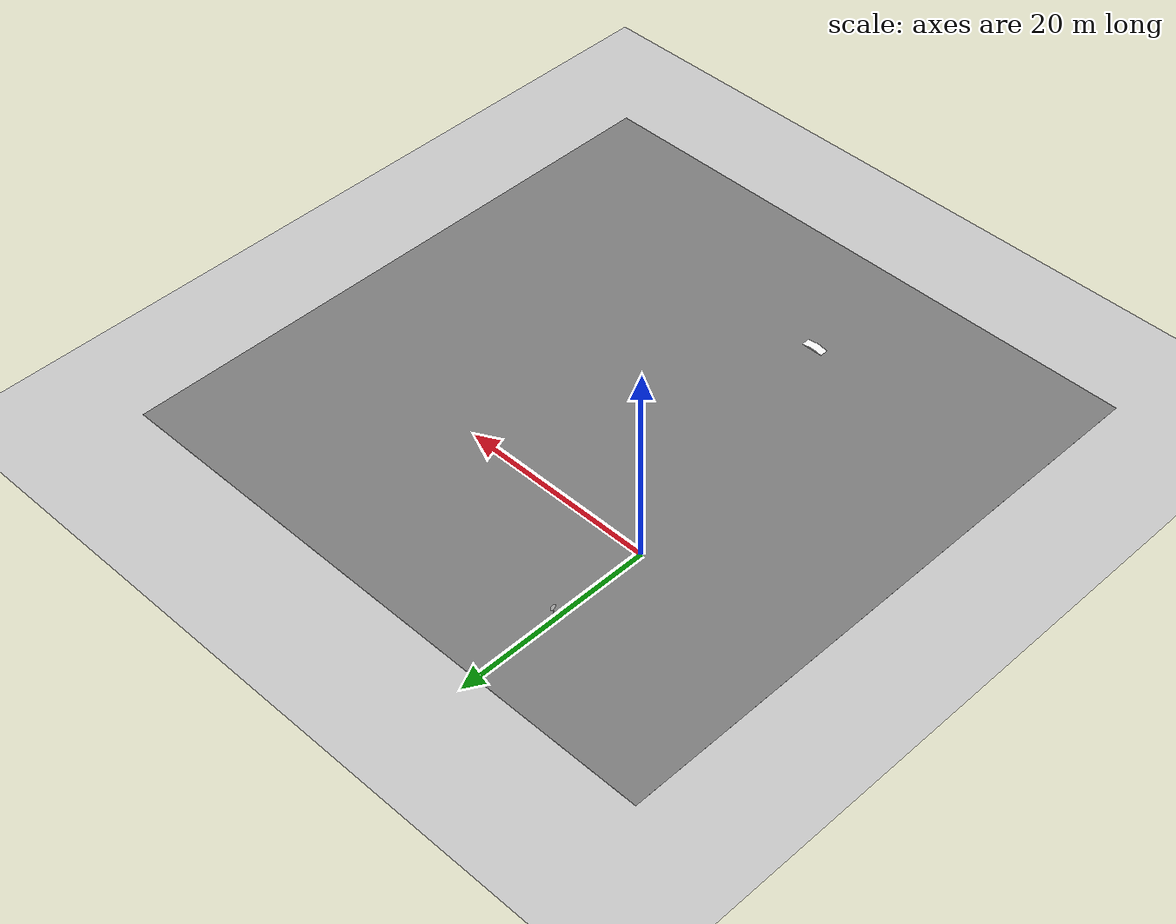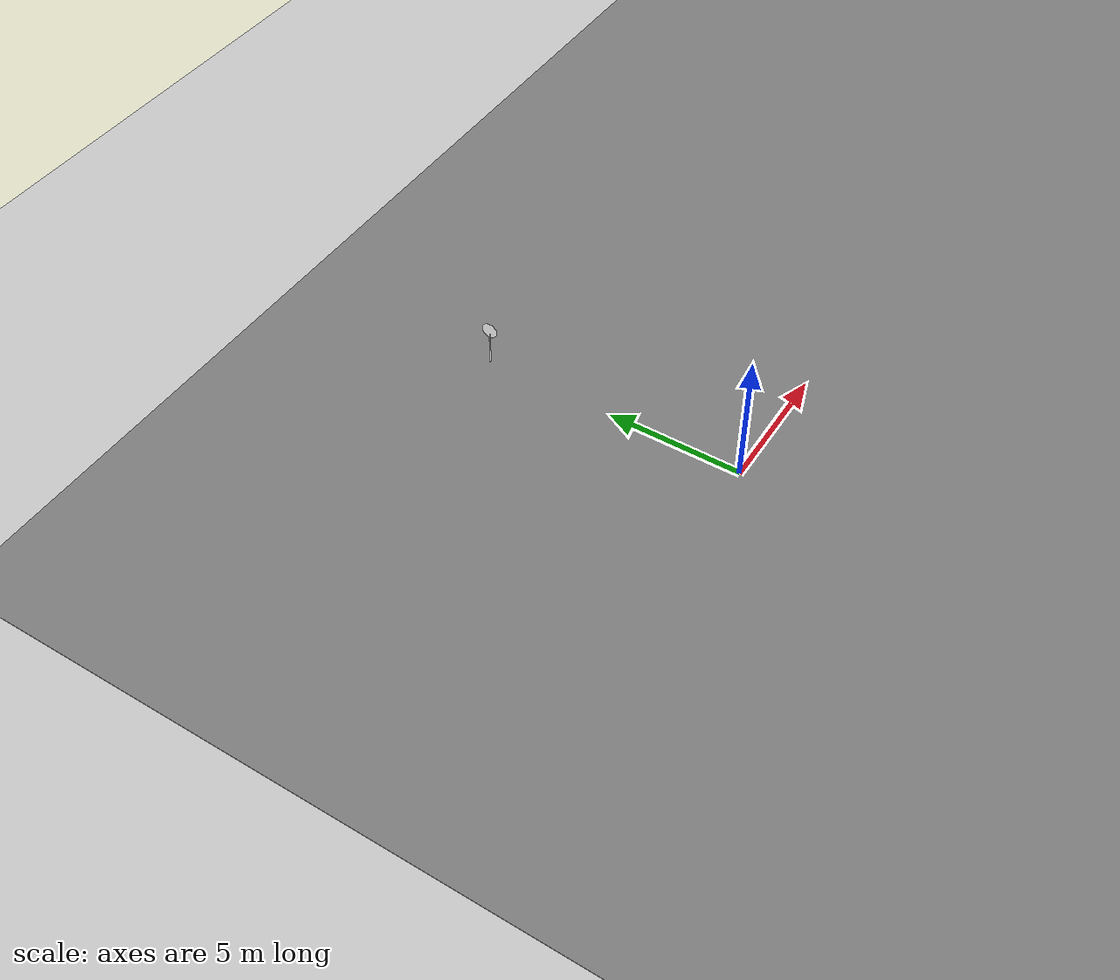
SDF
<sdf version="1.7">
 <world name="default">
  <scene><ambient>1 1 1</ambient><grid>false</grid></scene>
  <frame name="course_frame"><pose relative_to="world">-15 28.7 0 0 0 0</pose></frame>
  <spherical_coordinates>
   <surface_model>EARTH_WGS84</surface_model>
   <latitude_deg>42.66791</latitude_deg>
   <longitude_deg>-83.21958</longitude_deg>
   <elevation>286</elevation>
   <heading_deg>90</heading_deg>
  </spherical_coordinates>
  <physics name="1ms" type="ODE">
   <max_step_size>0.001</max_step_size>
   <real_time_factor>1.0</real_time_factor>
  </physics>
  <include><uri>model://ground_plane</uri><name>Ground Plane</name></include>
  <include>
   <uri>model://stop_sign</uri>
   <name>Stop Sign</name>
   <pose relative_to="course_frame">0 10 0 0 0 1.5708</pose>
  </include>
  <include>
   <uri>model://igvc_track</uri>
   <name>IGVC Track</name>
   <pose relative_to="course_frame">12.5 -11.5 0 0 0 3.1415</pose>
  </include>
  <include>
   <uri>model://ramp</uri>
   <name>Ramp</name>
   <pose relative_to="course_frame">6.5 -29 0 0 0 0</pose>
  </include>
  <light name="sun" type="directional">
   <pose>0 0 10 0 -0 0</pose>
   <diffuse>0.8 0.8 0.8 1</diffuse>
   <specular>0.2 0.2 0.2 1</specular>
   <attenuation>
    <range>1000</range>
    <constant>0.9</constant>
    <linear>0.01</linear>
    <quadratic>0.001</quadratic>
   </attenuation>
   <direction>-0.5 0.1 -0.9</direction>
   <spot><inner_angle>0</inner_angle><outer_angle>0</outer_angle><falloff>0</falloff></spot>
  </light>
  <gravity>0 0 -9.8</gravity>
  <magnetic_field>6e-06 2.3e-05 -4.2e-05</magnetic_field>
  <atmosphere type="adiabatic"/>
  <physics type="ode">
   <max_step_size>0.001</max_step_size>
   <real_time_factor>1</real_time_factor>
   <real_time_update_rate>1000</real_time_update_rate>
  </physics>
  <scene><ambient>0.7 0.7 0.7 1</ambient><background>0.8 0.8 0.8  1</background><shadows>1</shadows></scene>
 </world>
</sdf>

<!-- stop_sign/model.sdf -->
<sdf version="1.5">
  <model name="Stop Sign">
    <link name="link">
      <collision name="collision">
        <geometry>
          <mesh>
            <uri>model://stop_sign/meshes/stop_sign.dae</uri>
          </mesh>
        </geometry>
      </collision>
      <visual name="visual">
        <geometry>
          <mesh>
            <uri>model://stop_sign/meshes/stop_sign.dae</uri>
          </mesh>
        </geometry>
        <material>
          <script>
            <uri>model://stop_sign/materials/scripts</uri>
            <uri>model://stop_sign/materials/textures</uri>
            <name>StopSign/Diffuse</name>
          </script>
        </material>
      </visual>
    </link>
  </model>
</sdf>

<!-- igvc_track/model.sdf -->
<sdf version="1.9">
  <model name="igvc_track">
    <static>true</static>
    <link name="link">
      <visual name="visual">
        <cast_shadows>false</cast_shadows>
        <geometry>
          <box>
            <size>60 60 .005</size>
          </box>
        </geometry>
        <material>
          <ambient>0.5 0.5 0.5 1.0</ambient>
          <diffuse>0.5 0.5 0.5 1.0</diffuse>
          <specular>0.2 0.2 0.2 1.0</specular>
          <pbr>
            <metal>
              <albedo_map>model://igvc_track/textures/ground_surface/tarmac2.png</albedo_map>
              <roughness>0.8</roughness>
              <metalness>0.0</metalness>
            </metal>
          </pbr>
        </material>
      </visual>
    </link>
    <link name="link2">
      <pose>0 0 0.006 0 0 0</pose>
      <visual name="visual">
        <cast_shadows>false</cast_shadows>
        <geometry>
          <box>
            <size>60 60 .001</size>
          </box>
        </geometry>
        <material>
          <diffuse>0.5 0.5 0.5 1.0</diffuse>
          <ambient>0.5 0.5 0.5 1.0</ambient>
          <specular>0.2 0.2 0.2 1.0</specular>
          <pbr>
            <metal>
              <albedo_map>model://igvc_track/textures/course/track_floor3.png</albedo_map>
              <roughness>0.8</roughness>
              <metalness>0.0</metalness>
            </metal>
          </pbr>
          <render_order>1</render_order>
          <uv_map>
            <scale>1.0 1.0</scale>
          </uv_map>
        </material>
      </visual>
    </link>
  </model>
</sdf>

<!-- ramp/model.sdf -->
<sdf version='1.6'>
  <model name='ramp'>
    <link name='link_0'>
      <inertial>
        <mass>1</mass>
        <inertia>
          <ixx>0.166667</ixx>
          <ixy>0</ixy>
          <ixz>0</ixz>
          <iyy>0.166667</iyy>
          <iyz>0</iyz>
          <izz>0.166667</izz>
        </inertia>
        <pose frame=''>0 0 0 0 -0 0</pose>
      </inertial>
      <pose frame=''>0 0 0 0 -0 0</pose>
      <gravity>1</gravity>
      <self_collide>0</self_collide>
      <kinematic>0</kinematic>
      <enable_wind>0</enable_wind>
      <visual name='visual'>
        <pose frame=''>0 0 0 0 -0 0</pose>
        <geometry>
          <mesh>
            <uri>model://ramp/meshes/ramp.dae</uri>
            <scale>1 1 1</scale>
          </mesh>
        </geometry>
        <material>
          <lighting>1</lighting>
          <ambient>1 1 1 1 </ambient>
          <diffuse>1 1 1 1 </diffuse>
          <specular>0 0 0 0</specular>
          <emissive>1 1 1 1 </emissive>
          <script>
            <uri>model://ramp/materials/scripts</uri>
            <uri>model://ramp/materials/textures</uri>
            <name>RAMP</name>
          </script>
          <shader type='vertex'>
            <normal_map>__default__</normal_map>
          </shader>
          <ambient>0.3 0.3 0.3 1</ambient>
          <diffuse>0.7 0.7 0.7 1</diffuse>
          <specular>0.01 0.01 0.01 1</specular>
          <emissive>0 0 0 1</emissive>
        </material>
        <transparency>0</transparency>
        <cast_shadows>1</cast_shadows>
      </visual>
      <collision name='collision'>
        <laser_retro>0</laser_retro>
        <max_contacts>10</max_contacts>
        <pose frame=''>0 0 0 0 -0 0</pose>
        <geometry>
          <mesh>
            <uri>model://ramp/meshes/ramp.dae</uri>
            <scale>1 1 1</scale>
          </mesh>
        </geometry>
        <surface>
          <friction>
            <ode>
              <mu>1</mu>
              <mu2>1</mu2>
              <fdir1>0 0 0</fdir1>
              <slip1>0</slip1>
              <slip2>0</slip2>
            </ode>
            <torsional>
              <coefficient>1</coefficient>
              <patch_radius>0</patch_radius>
              <surface_radius>0</surface_radius>
              <use_patch_radius>1</use_patch_radius>
              <ode>
                <slip>0</slip>
              </ode>
            </torsional>
          </friction>
          <bounce>
            <restitution_coefficient>0</restitution_coefficient>
            <threshold>1e+06</threshold>
          </bounce>
          <contact>
            <collide_without_contact>0</collide_without_contact>
            <collide_without_contact_bitmask>1</collide_without_contact_bitmask>
            <collide_bitmask>1</collide_bitmask>
            <ode>
              <soft_cfm>0</soft_cfm>
              <soft_erp>0.2</soft_erp>
              <kp>1e+13</kp>
              <kd>1</kd>
              <max_vel>0.01</max_vel>
              <min_depth>0</min_depth>
            </ode>
            <bullet>
              <split_impulse>1</split_impulse>
              <split_impulse_penetration_threshold>-0.01</split_impulse_penetration_threshold>
              <soft_cfm>0</soft_cfm>
              <soft_erp>0.2</soft_erp>
              <kp>1e+13</kp>
              <kd>1</kd>
            </bullet>
          </contact>
        </surface>
      </collision>
    </link>
    <static>1</static>
    <allow_auto_disable>1</allow_auto_disable>
  </model>
</sdf>
